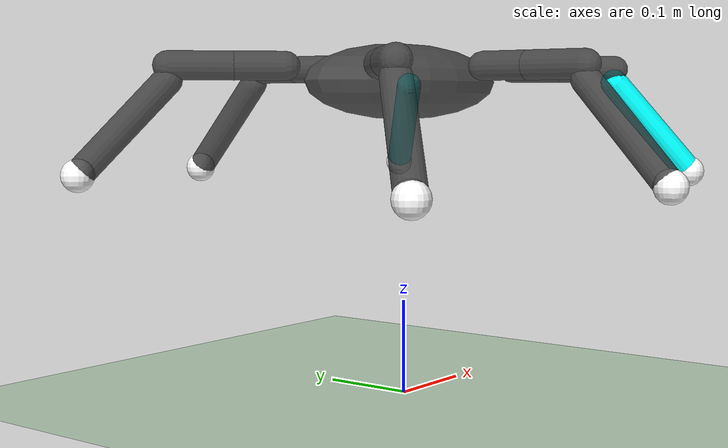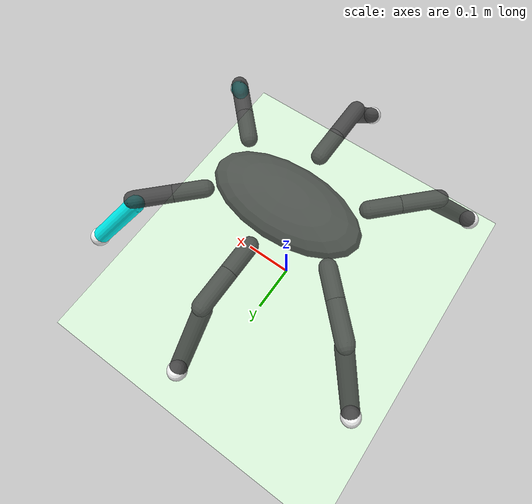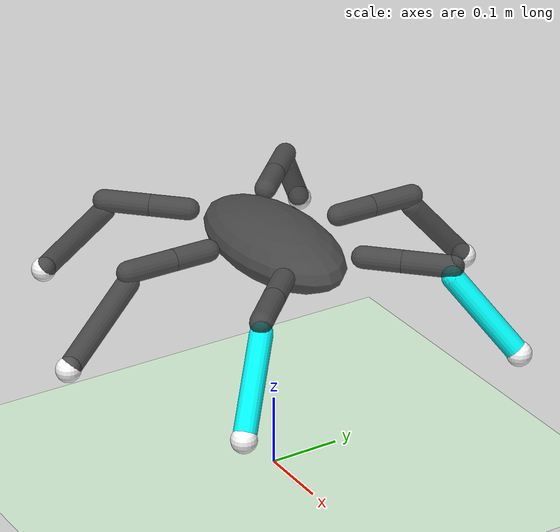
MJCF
<mujoco model="hexapod">
  <compiler angle="radian" coordinate="local" inertiafromgeom="true"/>
  <option integrator="RK4" timestep="0.003"/>
  <size nconmax="1000" njmax="2000"/>

  <default>
    <joint armature="0.1" damping="1.0" limited="true"/>
    <geom conaffinity="0" condim="3" density="5.0" friction="1.0 1.0 1.0" margin="0.0001" rgba="0.2 0.2 0.2 0.8"/>
  </default>

  <asset>
    <texture type="skybox" builtin="gradient" width="100" height="100" rgb1="1 1 1" rgb2="0 0 0" />
    <texture name="texgeom" type="cube" builtin="flat" mark="cross" width="127" height="1278" rgb1="0.8 0.6 0.4" rgb2="0.8 0.6 0.4" markrgb="1 1 1" random="0.01" />
    <texture name="texplane" type="2d" width="1" height="1" file="white2.png"/>
    <texture name="texhex" type="2d" width="1" height="1" file="white2.png"/>
    <texture name="texleg" type="2d" width="1" height="1" file="white2.png"/>
    <material name="MatPlane" reflectance="0.0" shininess="1" specular="1" texrepeat="14 4" texture="texplane"/>
    <material name="MatHex" reflectance="0.0" shininess="1" specular="1" texrepeat=".6 0.6" texture="texhex"/>
    <material name="MatLeg" reflectance="0.0" shininess="1" specular="1" texrepeat="1 1" texture="texleg"/>
    <material name='geom' texture="texgeom" texuniform="true" />
    <hfield name="hill" file="flat.png" size="1.8421052631578947 1.2 0.6 0.1" />
   </asset>

  <worldbody>
    <light cutoff="100" diffuse="0.7 0.7 0.7" dir="0 0 -1.3" directional="true" exponent="1" pos="0 0 0" specular="0.1 0.1 0.1"/>
    <geom conaffinity="1" condim="3" material="MatPlane" name="floor" pos="0 0 0" rgba="0.8 0.9 0.8 1" size="40 40 40" type="plane"/>
    <body name="torso" pos="0 0 0.35">
      <camera name="track" mode="track" pos="-2 -0.5 0.5" xyaxes="0.4 -1 0 0 0 1"/>
      <geom name="torso_geom" pos="0 0 -0.015" size="0.14 0.07 0.04" mass="1.4" type="ellipsoid" material="MatHex"/>
      <joint armature="0" damping="0" limited="false" margin="0.01" name="root" pos="0 0 0" type="free"/>

      <body name="front_left_leg" pos="0.12 0.06 0">
        <joint axis="0 0 1" name="coxa_fl" pos="0.0 0.0 0.0" range="-0.3 0.3" type="hinge"/>
          <geom fromto="0.0 0.0 0.0 0.03676 0.03676 0.0" name="coxa_fl_geom" size="0.015" mass="0.015" type="capsule" material="MatLeg"/>
          <body pos="0.03676 0.03676 0">
            <joint axis="-1 1 0" name="femur_fl" pos="0.0 0.0 0.0" range="-1.6 0.0" type="hinge"/>
            <geom fromto="0.0 0.0 0.0 0.0466 0.0466 0.0" name="femur_fl_geom" size="0.015" mass="0.07" type="capsule" material="MatLeg"/>
             <body pos="0.0466 0.0466 -0.015">
                <joint axis="-1 1 0" name="tibia_fl" pos="0.0 0.0 0.0" range="0.7 1.9" type="hinge"/>
                <geom fromto="0.0 0.0 0.0 0.0636 0.0636 -0.1" name="tibia_fl_geom" size="0.015" mass="0.08" type="capsule" rgba="0 1 1 1" material="MatLeg"/>
                <site name="l0" pos="0.0636 0.0636 -0.1" size=".017" type="sphere" rgba="1.0 1.0 1.0 1.0"/>
             </body>
          </body>
      </body>

      <body name="front_right_leg" pos="0.12 -0.06 0">
        <joint axis="0 0 1" name="coxa_fr" pos="0.0 0.0 0.0" range="-0.3 0.3" type="hinge"/>
          <geom fromto="0.0 0.0 0.0 0.03676 -0.03676 0.0" name="coxa_fr_geom" size="0.015" mass="0.015" type="capsule"/>
          <body pos="0.03676 -0.03676 0">
            <joint axis="1 1 0" name="femur_fr" pos="0.0 0.0 0.0" range="-1.6 0.0" type="hinge"/>
            <geom fromto="0.0 0.0 0.0 0.0466 -0.0466 0.0" name="femur_fr_geom" size="0.015" mass="0.07" type="capsule"/>
             <body pos="0.0466 -0.0466 -0.015">
                <joint axis="1 1 0" name="tibia_fr" pos="0.0 0.0 0.0" range="0.7 1.9" type="hinge"/>
                <geom fromto="0.0 0.0 0.0 0.0636 -0.0636 -0.1" name="tibia_fr_geom" size="0.015" mass="0.08" type="capsule" rgba="0 1 1 1"/>
                <site name="l1" pos="0.0636 -0.0636 -0.1" size=".017" type="sphere" rgba="1.0 1.0 1.0 1.0"/>
            </body>
          </body>
      </body>

      <body name="mid_left_leg" pos="0.0 0.1 0">
        <joint axis="0 0 1" name="coxa_ml" pos="0.0 0.0 0.0" range="-0.3 0.3" type="hinge" />
          <geom fromto="0.0 0.0 0.0 0.0 0.052 0.0" name="coxa_ml_geom" size="0.015" mass="0.015" type="capsule" material="MatLeg"/>
          <body pos="0.0 0.052 0">
            <joint axis="-1 0 0" name="femur_ml" pos="0.0 0.0 0.0" range="-1.6 0.0" type="hinge"/>
            <geom fromto="0.0 0.0 0.0 0.0 0.066 0" name="femur_ml_geom" size="0.015" mass="0.07" type="capsule" material="MatLeg"/>
             <body pos="0.0 0.066 -0.015">
                <joint axis="-1 0 0" name="tibia_ml" pos="0.0 0.0 0.0" range="0.7 1.9" type="hinge"/>
                <geom fromto="0.0 0.0 0.0 0.0 0.09 -0.10" name="tibia_ml_geom" size="0.015" mass="0.8" type="capsule" material="MatLeg"/>
                <site name="l2" pos="0 0.09 -0.1" size=".017" type="sphere" rgba="1.0 1.0 1.0 1.0"/>
            </body>
          </body>
      </body>

      <body name="mid_right_leg" pos="0.0 -0.1 0">
        <joint axis="0 0 1" name="coxa_mr" pos="0.0 0.0 0.0" range="-0.3 0.3" type="hinge"/>
          <geom fromto="0.0 0.0 0.0 0.0 -0.052 0.0" name="coxa_mr_geom" size="0.015" mass="0.015" type="capsule"/>
          <body pos="0.0 -0.052 0">
            <joint axis="1 0 0" name="femur_mr" pos="0.0 0.0 0.0" range="-1.6 0.0" type="hinge"/>
            <geom fromto="0.0 0.0 0.0 0.0 -0.066 0.0" name="femur_mr_geom" size="0.015" mass="0.07" type="capsule"/>
             <body pos="0.0 -0.066 -0.015">
                <joint axis="1 0 0" name="tibia_mr" pos="0.0 0.0 0.0" range="0.7 1.9" type="hinge"/>
                <geom fromto="0.0 0.0 0.0 0.0 -0.09 -0.1" name="tibia_mr_geom" size="0.015" mass="0.08" type="capsule"/>
                <site name="l3" pos="0 -0.09 -0.1" size=".017" type="sphere" rgba="1.0 1.0 1.0 1.0"/>
            </body>
          </body>
      </body>

      <body name="back_left_leg" pos="-0.12 0.06 0">
        <joint axis="0 0 1" name="coxa_rl" pos="0.0 0.0 0.0" range="-0.3 0.3" type="hinge"/>
          <geom fromto="0.0 0.0 0.0 -0.03676 0.03676 0.0" name="coxa_rl_geom" size="0.015" mass="0.015" type="capsule"/>
          <body pos="-0.03676 0.03676 0">
            <joint axis="-1 -1 0" name="femur_rl" pos="0.0 0.0 0.0" range="-1.6 0.0" type="hinge"/>
            <geom fromto="0.0 0.0 0.0 -0.0466 0.0466 0" name="femur_rl_geom" size="0.015" mass="0.07"  type="capsule"/>
             <body pos="-0.0466 0.04660 -0.015">
                <joint axis="-1 -1 0" name="tibia_rl" pos="0.0 0.0 0.0" range="0.7 1.9" type="hinge"/>
                <geom fromto="0.0 0.0 0.0 -0.0636 0.0636 -0.095" name="tibia_rl_geom" size="0.015" mass="0.08" type="capsule"/>
               <site name="l4" pos="-0.0636 0.0636 -0.095" size=".017" type="sphere" rgba="1.0 1.0 1.0 1.0"/>
            </body>
          </body>
      </body>

      <body name="back_right_leg" pos="-0.12 -0.06 0">
        <joint axis="0 0 1" name="coxa_rr" pos="0.0 0.0 0.0" range="-0.3 0.3" type="hinge"/>
          <geom fromto="0.0 0.0 0.0 -0.03676 -0.03676 0.0" name="coxa_rr_geom" size="0.015" mass="0.015" type="capsule"/>
          <body pos="-0.03676 -0.03676 0">
            <joint axis="1 -1 0" name="femur_rr" pos="0.0 0.0 0.0" range="-1.6 0.0" type="hinge"/>
            <geom fromto="0.0 0.0 0.0 -0.0466 -0.0466 0.0" name="femur_rr_geom" size="0.015" mass="0.07" type="capsule"/>
             <body pos="-0.0466 -0.0466 -0.015">
                <joint axis="1 -1 0" name="tibia_rr" pos="0.0 0.0 0.0" range="0.7 1.9" type="hinge"/>
                <geom fromto="0.0 0.0 0.0 -0.0636 -0.0636 -0.1" name="tibia_rr_geom" size="0.015" mass="0.08" type="capsule"/>
               <site name="l5" pos="-0.0636 -0.0636 -0.1" size=".017" type="sphere" rgba="1.0 1.0 1.0 1.0"/>
            </body>
          </body>
      </body>

    </body>
  </worldbody>

  <sensor>
     <touch name="t0" site="l0" />
  </sensor>

  <sensor>
     <touch name="t1" site="l1" />
  </sensor>

  <sensor>
     <touch name="t2" site="l2" />
  </sensor>

  <sensor>
     <touch name="t3" site="l3" />
  </sensor>

  <sensor>
     <touch name="t4" site="l4" />
  </sensor>

  <sensor>
     <touch name="t5" site="l5" />
  </sensor>

  <actuator>
    <position joint="coxa_fl" kp="10" forcelimited="true" forcerange="-1.4 1.4" />
    <position joint="femur_fl" kp="10" forcelimited="true" forcerange="-1.4 1.4" />
    <position joint="tibia_fl" kp="10" forcelimited="true" forcerange="-1.4 1.4" />
    <position joint="coxa_fr" kp="10" forcelimited="true" forcerange="-1.4 1.4" />
    <position joint="femur_fr" kp="10" forcelimited="true" forcerange="-1.4 1.4" />
    <position joint="tibia_fr" kp="10" forcelimited="true" forcerange="-1.4 1.4" />
    <position joint="coxa_ml" kp="10" forcelimited="true" forcerange="-1.4 1.4" />
    <position joint="femur_ml" kp="10" forcelimited="true" forcerange="-1.4 1.4" />
    <position joint="tibia_ml" kp="10" forcelimited="true" forcerange="-1.4 1.4" />
    <position joint="coxa_mr" kp="10" forcelimited="true" forcerange="-1.4 1.4" />
    <position joint="femur_mr" kp="10" forcelimited="true" forcerange="-1.4 1.4" />
    <position joint="tibia_mr" kp="10" forcelimited="true" forcerange="-1.4 1.4" />
    <position joint="coxa_rl" kp="10" forcelimited="true" forcerange="-1.4 1.4" />
    <position joint="femur_rl" kp="10" forcelimited="true" forcerange="-1.4 1.4" />
    <position joint="tibia_rl" kp="10" forcelimited="true" forcerange="-1.4 1.4" />
    <position joint="coxa_rr" kp="10" forcelimited="true" forcerange="-1.4 1.4" />
    <position joint="femur_rr" kp="10" forcelimited="true" forcerange="-1.4 1.4" />
    <position joint="tibia_rr" kp="10" forcelimited="true" forcerange="-1.4 1.4" />

  </actuator>
</mujoco>
